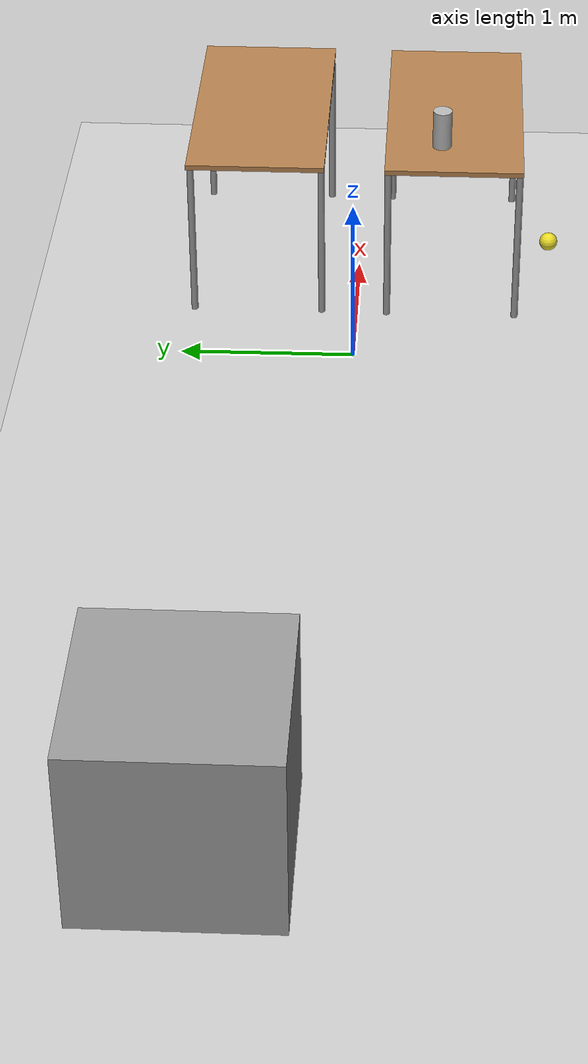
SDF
<sdf version="1.6">
 <world name="default">
  <light name="sun" type="directional">
   <pose>0 0 10 0 -0 0</pose>
   <diffuse>0.8 0.8 0.8 1</diffuse>
   <specular>0.2 0.2 0.2 1</specular>
   <attenuation>
    <range>1000</range>
    <constant>0.9</constant>
    <linear>0.01</linear>
    <quadratic>0.001</quadratic>
   </attenuation>
   <direction>-0.5 0.1 -0.9</direction>
  </light>
  <physics name="dart_2ms" default="1" type="dart">
   <max_step_size>0.002</max_step_size>
   <real_time_factor>1</real_time_factor>
   <real_time_update_rate>500</real_time_update_rate>
  </physics>
  <model name="ground_plane">
   <static>1</static>
   <link name="link">
    <collision name="collision">
     <geometry><plane><normal>0 0 1</normal><size>100 100</size></plane></geometry>
     <surface><friction><ode><mu>100</mu><mu2>50</mu2></ode></friction></surface>
    </collision>
    <visual name="visual">
     <cast_shadows>0</cast_shadows>
     <geometry><plane><normal>0 0 1</normal><size>100 100</size></plane></geometry>
     <material>
      <script><uri>file://media/materials/scripts/gazebo.material</uri><name>Gazebo/Grey</name></script>
     </material>
    </visual>
   </link>
  </model>
  <scene><ambient>0.4 0.4 0.4 1</ambient><background>0.7 0.7 0.7 1</background><shadows>1</shadows></scene>
  <audio><device>default</device></audio>
  <spherical_coordinates>
   <surface_model>EARTH_WGS84</surface_model>
   <latitude_deg>0</latitude_deg>
   <longitude_deg>0</longitude_deg>
   <elevation>0</elevation>
   <heading_deg>0</heading_deg>
  </spherical_coordinates>
  <gravity>0 0 -9.8</gravity>
  <magnetic_field>6e-06 2.3e-05 -4.2e-05</magnetic_field>
  <atmosphere type="adiabatic"/>
  <model name="dummy">
   <link name="link">
    <gravity>0</gravity>
    <inertial>
     <mass>0.0122</mass>
     <inertia>
      <ixx>1.08758e-06</ixx>
      <ixy>0</ixy>
      <ixz>0</ixz>
      <iyy>1.08758e-06</iyy>
      <iyz>0</iyz>
      <izz>2.16703e-06</izz>
     </inertia>
    </inertial>
    <visual name="visual">
     <geometry><sphere><radius>0.05</radius></sphere></geometry>
     <material>
      <script><uri>file://media/materials/scripts/gazebo.material</uri><name>Gazebo/Yellow</name></script>
     </material>
    </visual>
   </link>
   <pose>-0.025936 -1.09836 0.821285 0 -0 0</pose>
  </model>
  <model name="unit_box">
   <pose>-4.08414 0.595281 0.5 0 -0 0</pose>
   <link name="link">
    <inertial>
     <mass>1</mass>
     <inertia>
      <ixx>0.166667</ixx>
      <ixy>0</ixy>
      <ixz>0</ixz>
      <iyy>0.166667</iyy>
      <iyz>0</iyz>
      <izz>0.166667</izz>
     </inertia>
    </inertial>
    <collision name="collision"><geometry><box><size>1 1 1</size></box></geometry></collision>
    <visual name="visual">
     <geometry><box><size>1 1 1</size></box></geometry>
     <material>
      <script><name>Gazebo/Grey</name><uri>file://media/materials/scripts/gazebo.material</uri></script>
     </material>
    </visual>
   </link>
  </model>
  <model name="table">
   <static>1</static>
   <link name="link">
    <collision name="surface">
     <pose>0 0 1 0 -0 0</pose>
     <geometry><box><size>1.5 0.8 0.03</size></box></geometry>
     <surface><friction><ode><mu>0.6</mu><mu2>0.6</mu2></ode></friction></surface>
    </collision>
    <visual name="visual1">
     <pose>0 0 1 0 -0 0</pose>
     <geometry><box><size>1.5 0.8 0.03</size></box></geometry>
     <material>
      <script><uri>file://media/materials/scripts/gazebo.material</uri><name>Gazebo/Wood</name></script>
     </material>
    </visual>
    <collision name="front_left_leg">
     <pose>0.68 0.38 0.5 0 -0 0</pose>
     <geometry><cylinder><radius>0.02</radius><length>1</length></cylinder></geometry>
    </collision>
    <visual name="front_left_leg">
     <pose>0.68 0.38 0.5 0 -0 0</pose>
     <geometry><cylinder><radius>0.02</radius><length>1</length></cylinder></geometry>
     <material>
      <script><uri>file://media/materials/scripts/gazebo.material</uri><name>Gazebo/Grey</name></script>
     </material>
    </visual>
    <collision name="front_right_leg">
     <pose>0.68 -0.38 0.5 0 -0 0</pose>
     <geometry><cylinder><radius>0.02</radius><length>1</length></cylinder></geometry>
    </collision>
    <visual name="front_right_leg">
     <pose>0.68 -0.38 0.5 0 -0 0</pose>
     <geometry><cylinder><radius>0.02</radius><length>1</length></cylinder></geometry>
     <material>
      <script><uri>file://media/materials/scripts/gazebo.material</uri><name>Gazebo/Grey</name></script>
     </material>
    </visual>
    <collision name="back_right_leg">
     <pose>-0.68 -0.38 0.5 0 -0 0</pose>
     <geometry><cylinder><radius>0.02</radius><length>1</length></cylinder></geometry>
    </collision>
    <visual name="back_right_leg">
     <pose>-0.68 -0.38 0.5 0 -0 0</pose>
     <geometry><cylinder><radius>0.02</radius><length>1</length></cylinder></geometry>
     <material>
      <script><uri>file://media/materials/scripts/gazebo.material</uri><name>Gazebo/Grey</name></script>
     </material>
    </visual>
    <collision name="back_left_leg">
     <pose>-0.68 0.38 0.5 0 -0 0</pose>
     <geometry><cylinder><radius>0.02</radius><length>1</length></cylinder></geometry>
    </collision>
    <visual name="back_left_leg">
     <pose>-0.68 0.38 0.5 0 -0 0</pose>
     <geometry><cylinder><radius>0.02</radius><length>1</length></cylinder></geometry>
     <material>
      <script><uri>file://media/materials/scripts/gazebo.material</uri><name>Gazebo/Grey</name></script>
     </material>
    </visual>
   </link>
   <pose>1.14196 -0.562364 0 0 -0 0</pose>
  </model>
  <model name="table_0">
   <static>1</static>
   <link name="link">
    <collision name="surface">
     <pose>0 0 1 0 -0 0</pose>
     <geometry><box><size>1.5 0.8 0.03</size></box></geometry>
     <surface><friction><ode><mu>0.6</mu><mu2>0.6</mu2></ode></friction></surface>
    </collision>
    <visual name="visual1">
     <pose>0 0 1 0 -0 0</pose>
     <geometry><box><size>1.5 0.8 0.03</size></box></geometry>
     <material>
      <script><uri>file://media/materials/scripts/gazebo.material</uri><name>Gazebo/Wood</name></script>
     </material>
    </visual>
    <collision name="front_left_leg">
     <pose>0.68 0.38 0.5 0 -0 0</pose>
     <geometry><cylinder><radius>0.02</radius><length>1</length></cylinder></geometry>
    </collision>
    <visual name="front_left_leg">
     <pose>0.68 0.38 0.5 0 -0 0</pose>
     <geometry><cylinder><radius>0.02</radius><length>1</length></cylinder></geometry>
     <material>
      <script><uri>file://media/materials/scripts/gazebo.material</uri><name>Gazebo/Grey</name></script>
     </material>
    </visual>
    <collision name="front_right_leg">
     <pose>0.68 -0.38 0.5 0 -0 0</pose>
     <geometry><cylinder><radius>0.02</radius><length>1</length></cylinder></geometry>
    </collision>
    <visual name="front_right_leg">
     <pose>0.68 -0.38 0.5 0 -0 0</pose>
     <geometry><cylinder><radius>0.02</radius><length>1</length></cylinder></geometry>
     <material>
      <script><uri>file://media/materials/scripts/gazebo.material</uri><name>Gazebo/Grey</name></script>
     </material>
    </visual>
    <collision name="back_right_leg">
     <pose>-0.68 -0.38 0.5 0 -0 0</pose>
     <geometry><cylinder><radius>0.02</radius><length>1</length></cylinder></geometry>
    </collision>
    <visual name="back_right_leg">
     <pose>-0.68 -0.38 0.5 0 -0 0</pose>
     <geometry><cylinder><radius>0.02</radius><length>1</length></cylinder></geometry>
     <material>
      <script><uri>file://media/materials/scripts/gazebo.material</uri><name>Gazebo/Grey</name></script>
     </material>
    </visual>
    <collision name="back_left_leg">
     <pose>-0.68 0.38 0.5 0 -0 0</pose>
     <geometry><cylinder><radius>0.02</radius><length>1</length></cylinder></geometry>
    </collision>
    <visual name="back_left_leg">
     <pose>-0.68 0.38 0.5 0 -0 0</pose>
     <geometry><cylinder><radius>0.02</radius><length>1</length></cylinder></geometry>
     <material>
      <script><uri>file://media/materials/scripts/gazebo.material</uri><name>Gazebo/Grey</name></script>
     </material>
    </visual>
   </link>
   <pose>1.15202 0.585391 0 0 -0 0</pose>
  </model>
  <model name="beer">
   <link name="link">
    <pose>0 0 0.115 0 -0 0</pose>
    <inertial>
     <mass>0.39</mass>
     <inertia><ixx>0.00058</ixx><ixy>0</ixy><ixz>0</ixz><iyy>0.00058</iyy><iyz>0</iyz><izz>0.00019</izz></inertia>
    </inertial>
    <collision name="collision">
     <geometry><cylinder><radius>0.055</radius><length>0.23</length></cylinder></geometry>
    </collision>
    <visual name="visual">
     <geometry><cylinder><radius>0.055</radius><length>0.23</length></cylinder></geometry>
     <material>
      <script>
       <uri>model://beer/materials/scripts</uri>
       <uri>model://beer/materials/textures</uri>
       <name>Beer/Diffuse</name>
      </script>
     </material>
    </visual>
   </link>
   <pose>0.665287 -0.488279 1.03229 0 -0 0</pose>
  </model>
 </world>
</sdf>
